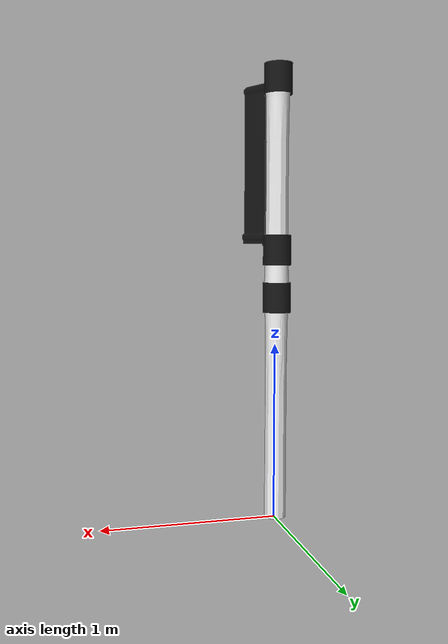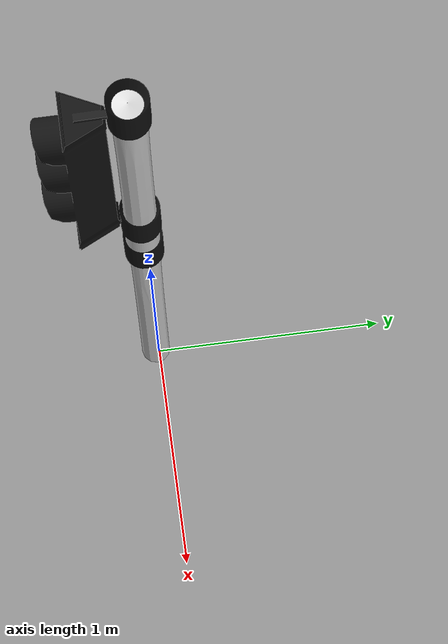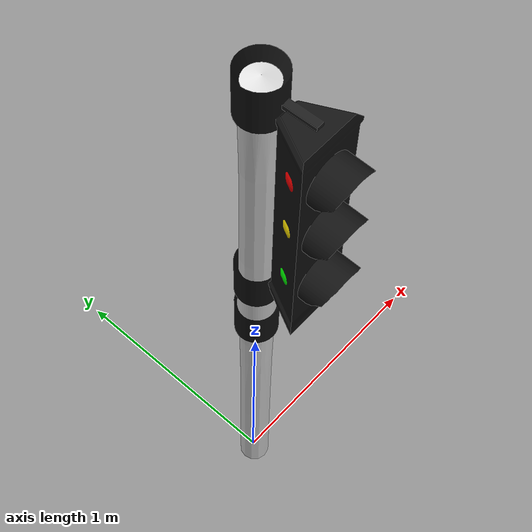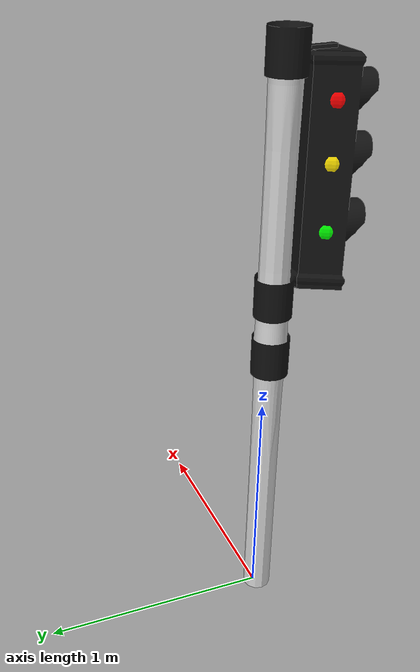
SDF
<?xml version="1.0" ?>
<sdf version="1.5">
  <model name="traffic_signal">

    <pose>0 0 0  0 0 0</pose>

    <static>true</static>
    <link name="link">

      <collision name="collision">
        <geometry>
          <cylinder>
            <length> 1</length>
            <radius> 0.03</radius>
          </cylinder>
        </geometry>
      </collision>

      <visual name="visual">
        <geometry>
          <mesh>
            <uri>model://traffic_signal/meshes/trafic_lights.dae</uri>
            <scale>0.1 0.1 0.1</scale>
          </mesh>
        </geometry>
        <material>
           <script>
</script>
        </material>
      </visual>
    </link>
  </model>
</sdf>
